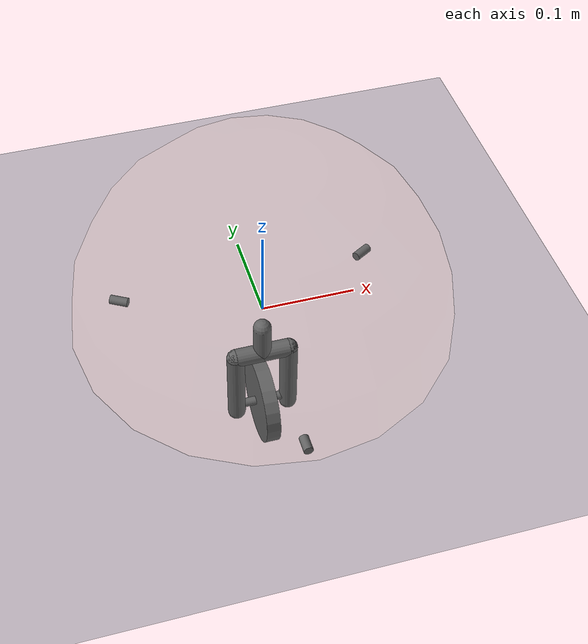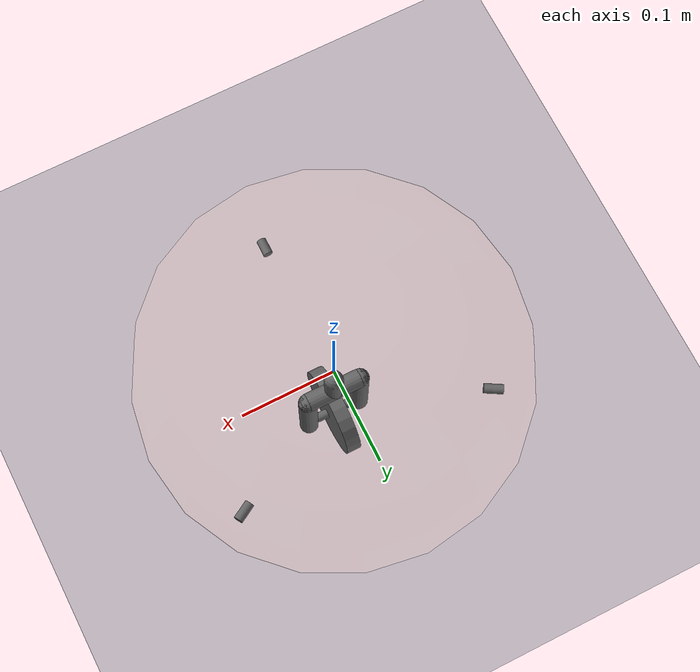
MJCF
<?xml version="1.0"?>
    <mujoco model="sphere_robot">

        <compiler inertiafromgeom="true" angle="degree"/>
        <option integrator="RK4"/>
        <option timestep="0.005" iterations="50" solver="Newton" tolerance="1e-10"/>
        <size njmax="1500" nconmax="5000" nstack="5000000"/>

        <asset>
            <texture type="skybox" builtin="gradient" rgb1="0.3 0.5 0.7" rgb2="0 0 0" width="512" height="512"/>
            <texture name="texplane" type="2d" builtin="checker" rgb1=".2 .3 .4" rgb2=".1 0.15 0.2" width="512" height="512" mark="cross" markrgb=".8 .8 .8"/>
            <texture name="texgeom" type="cube" builtin="flat" mark="cross" width="127" height="1278"
                rgb1="0.8 0.6 0.4" rgb2="0.8 0.6 0.4" markrgb="1 1 1" random="0.01"/>
            <material name="matplane" reflectance="0.3" texture="texplane" texrepeat="1 1" texuniform="true"/>
            <material name="matgeom" texture="texgeom" texuniform="true" rgba="0.8 0.6 .4 1"/>
        </asset>

        <visual>
            <map force="0.1" zfar="30"/>
            <rgba haze="0.15 0.25 0.35 1"/>
            <quality shadowsize="2048"/>
            <global offwidth="800" offheight="800"/>
        </visual>

        <worldbody>
            <geom name="floor" pos="0 0 0" size="0 0 .25" type="plane" material="matplane" condim="3"/>
            <camera name="fixed" pos="0 -4 1" zaxis="0 -1 0"/>

            <light pos="0 0 6"/>
            <light directional="false" diffuse=".2 .2 .2" specular="0 0 0" pos="0 0 5" dir="0 0 -1" castshadow="false"/>

            <body name="shell" pos="0 0 0" euler="0 0 0"> <!-- last zero is roll angle-->
                <joint name="shell_floor" type="free"/>
                <geom name="sphere_shell" type="sphere" pos="0 0 0" size=".2 .19" rgba=".0 .0 .0 .2" mass="0.2" friction="1 5 1" group="1"/>

                <body name="wheel">
                    <joint name="wheel_with_shell" type="ball" frictionloss="0.0068"/>
                    <geom name="wheel_" type="cylinder" fromto="-0.008 0 -0.15  0.008 0 -0.15" size="0.049 0.005" mass="0.7"/>
                    <!-- friction[0] sliding friction, friction[1] torsional friction, friction[2] rolling friction -->

                    <body>
                       <geom name="wheel_axis1" type="cylinder" fromto="-0.03 0 -0.15  -0.008 0 -0.15" size="0.005" mass="0.005"/>
                       <geom name="wheel_axis2" type="cylinder" fromto="0.008 0 -0.15  0.03 0 -0.15" size="0.005" mass="0.005"/>

                       <geom name="fork1" type="capsule" fromto="-0.03 0 -0.07  -0.03 0 -0.16" size="0.01" mass="0.01" group="1"/>
                       <geom name="fork2" type="capsule" fromto="0.03 0 -0.07  0.03 0 -0.16" size="0.01" mass="0.01" group="1"/>
                       <geom name="link_f1_f2" type="capsule" fromto="-0.03 0 -0.07   0.03 0 -0.07" size="0.01" mass="0.001" group="1"/>
                       <geom name="fork0" type="capsule" fromto="0 0 -0.03  0 0 -0.07" size="0.01" mass="0.1" group="0.01"/>
                    </body>

                    <body>
                        <joint name="fork_with_platform" type="hinge" axis="0 0 1" frictionloss="0.1"/>
                        <geom name="platform" type="cylinder" pos="0 0 -0.03" size=".15 .005" rgba=".0 .0 .3 .5" mass="2" group="1"/>
                        <geom name="line1" type="cylinder" fromto="0       -0.15 -0.03    0     -0.167 -0.03" size="0.005"/>
                        <geom name="line2" type="cylinder" fromto="0.1299  0.075 -0.03    0.1472 0.085 -0.03" size="0.005"/>
                        <geom name="line3" type="cylinder" fromto="-0.1299 0.075 -0.03   -0.1472 0.085 -0.03" size="0.005"/>
                        <site name="mpu9250" pos="0 0 -0.03" size=".03 .03 .03" type="ellipsoid" rgba="0.3 0.2 0.1 0.3"/>
                    </body>
                </body>
            </body>
        </worldbody>

        <actuator>
            <motor name="platform_motor" gear="0.107" joint="fork_with_platform" ctrllimited="true" ctrlrange="-0.975 0.975"/>
            <motor name="wheel_motor" gear="90" joint="wheel_with_shell" ctrllimited="true" ctrlrange="-0.6 0.6"/>
        </actuator>

        <sensor>
            <subtreecom name="shell_center" body="shell"/>

            <jointpos name="fork_wheel_angle" joint="fork_with_platform"/> <!-- угол поворота колеса -->

            <subtreelinvel name="sphere_vel" body="shell"/>

            <subtreelinvel name="wheel_vel" body="wheel"/>

            <frameangvel name="sphere_angular_vel" objtype="geom" objname="sphere_shell"/>

            <accelerometer name="imu_accel" site="mpu9250"/>
            <gyro name="imu_gyro" site="mpu9250"/>
        </sensor>
    </mujoco>
